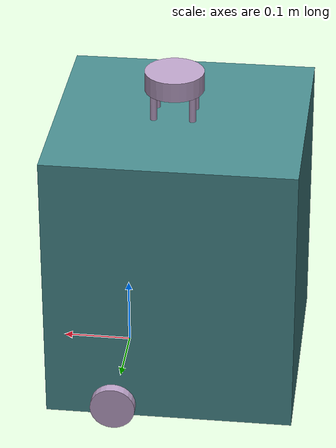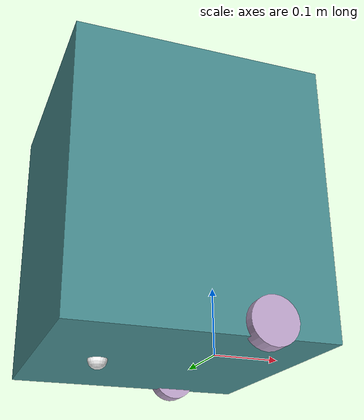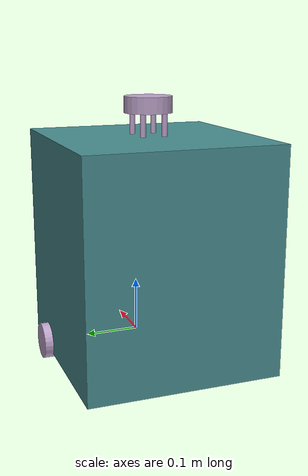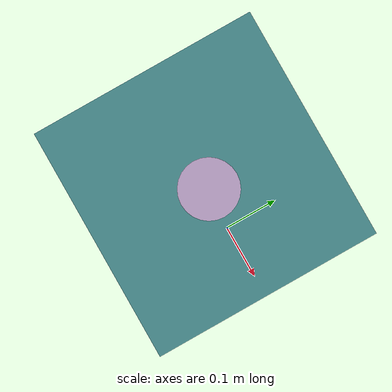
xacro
<?xml version="1.0"?>
<robot xmlns:xacro="http://www.ros.org/wiki/xacro"  name="robot">

    <xacro:arg name="use_ros2_control" default="true"/>
    <xacro:arg name="sim_mode" default="false"/>

    <xacro:include filename="robot_core.xacro" />

    <xacro:if value="$(arg use_ros2_control)">
        <xacro:include filename="ros2_control.xacro" />
    </xacro:if>
    <xacro:unless value="$(arg use_ros2_control)">
        <xacro:include filename="gazebo_control.xacro" />
    </xacro:unless>

    <xacro:include filename="lidar.xacro" />

    <xacro:include filename="face.xacro" />

</robot>

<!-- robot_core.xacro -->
<robot xmlns:xacro="http://www.ros.org/wiki/xacro" >

    <xacro:include filename="inertial_macros.xacro"/>

    <xacro:property name="chassis_length" value="0.361"/>
    <xacro:property name="chassis_width" value="0.351"/>
    <xacro:property name="chassis_height" value="0.409"/>
    <xacro:property name="chassis_mass" value="10.0"/>
    <xacro:property name="wheel_radius" value="0.033"/>
    <xacro:property name="wheel_thickness" value="0.026"/>
    <xacro:property name="wheel_mass" value="0.05"/>
    <xacro:property name="wheel_offset_x" value="0.261"/>
    <xacro:property name="wheel_offset_y" value="0.1776"/>
    <xacro:property name="wheel_offset_z" value="0.0185"/>
    <xacro:property name="caster_wheel_radius" value="0.014"/>
    <xacro:property name="caster_wheel_mass" value="0.01"/>
    <xacro:property name="caster_wheel_offset_x" value="0.089"/>
    <xacro:property name="caster_wheel_offset_z" value="${wheel_offset_z - wheel_radius + caster_wheel_radius}"/>

    <material name="white">
        <color rgba="1 1 1 1" />
    </material>

    <material name="orange">
        <color rgba="1 0.3 0.1 1"/>
    </material>

    <material name="blue">
        <color rgba="0.2 0.2 1 1"/>
    </material>

    <material name="black">
        <color rgba="0 0 0 1"/>
    </material>

    <material name="red">
        <color rgba="1 0 0 1"/>
    </material>

    <material name="teal">
        <color rgba="0.28 0.55 0.56 1"/>
    </material>

    <material name="purple">
        <color rgba="0.74 0.64 0.79 1"/>
    </material>

    <!-- BASE LINK -->

    <link name="base_link">

    </link>

    <!-- BASE_FOOTPRINT LINK -->

    <joint name="base_footprint_joint" type="fixed">
        <parent link="base_link"/>
        <child link="base_footprint"/>
        <origin xyz="0 0 0" rpy="0 0 0"/>
    </joint>

    <link name="base_footprint">
    </link>

    <!-- CHASSIS LINK -->

    <joint name="chassis_joint" type="fixed">
        <parent link="base_link"/>
        <child link="chassis"/>
        <origin xyz="${-wheel_offset_x} 0 ${-wheel_offset_z}"/>
    </joint>

    <link name="chassis">
        <visual>
            <origin xyz="${chassis_length/2} 0 ${chassis_height/2}"/>
            <geometry>
                <box size="${chassis_length} ${chassis_width} ${chassis_height}"/>
            </geometry>
            <material name="teal"/>
        </visual>
        <collision>
            <origin xyz="${chassis_length/2} 0 ${chassis_height/2}"/>
            <geometry>
                <box size="${chassis_length} ${chassis_width} ${chassis_height}"/>
            </geometry>
        </collision>
        <xacro:inertial_box mass="8.5" x="${chassis_length}" y="${chassis_width}" z="${chassis_height}">
            <origin xyz="${chassis_length/2} 0 ${chassis_height/2}" rpy="0 0 0"/>
        </xacro:inertial_box>
    </link>

    <gazebo reference="chassis">
        <material>Gazebo/Teal</material>
    </gazebo>

    <!-- LEFT WHEEL LINK -->

    <joint name="left_wheel_joint" type="continuous">
        <parent link="base_link"/>
        <child link="left_wheel"/>
        <origin xyz="0 ${wheel_offset_y} 0" rpy="-${pi/2} 0 0" />
        <axis xyz="0 0 1"/>
    </joint>

    <link name="left_wheel">
        <visual>
            <geometry>
                <cylinder radius="${wheel_radius}" length="${wheel_thickness}"/>
            </geometry>
            <material name="purple"/>
        </visual>
        <collision>
            <geometry>
                <sphere radius="${wheel_radius}"/>
            </geometry>
        </collision>
        <xacro:inertial_cylinder mass="${wheel_mass}" length="${wheel_thickness}" radius="${wheel_radius}">
            <origin xyz="0 0 0" rpy="0 0 0"/>
        </xacro:inertial_cylinder>
    </link>

    <gazebo reference="left_wheel">
        <material>Gazebo/Purple</material>
    </gazebo>

    <!-- RIGHT WHEEL LINK -->

    <joint name="right_wheel_joint" type="continuous">
        <parent link="base_link"/>
        <child link="right_wheel"/>
        <origin xyz="0 ${-wheel_offset_y} 0" rpy="${pi/2} 0 0" />
        <axis xyz="0 0 -1"/>
    </joint>

    <link name="right_wheel">
        <visual>
            <geometry>
                <cylinder radius="${wheel_radius}" length="${wheel_thickness}"/>
            </geometry>
            <material name="purple"/>
        </visual>
        <collision>
            <geometry>
                <sphere radius="${wheel_radius}"/>
            </geometry>
        </collision>
        <xacro:inertial_cylinder mass="${wheel_mass}" length="${wheel_thickness}" radius="${wheel_radius}">
            <origin xyz="0 0 0" rpy="0 0 0"/>
        </xacro:inertial_cylinder>
    </link>

    <gazebo reference="right_wheel">
        <material>Gazebo/Purple</material>
    </gazebo>

    <!-- CASTER WHEEL LINK -->

    <joint name="caster_wheel_joint" type="fixed">
        <parent link="chassis"/>
        <child link="caster_wheel"/>
        <origin xyz="${caster_wheel_offset_x} 0 ${caster_wheel_offset_z}"/>
    </joint>

    <link name="caster_wheel">
        <visual>
            <geometry>
                <sphere radius="${caster_wheel_radius}"/>
            </geometry>
            <material name="white"/>
        </visual>
        <collision>
            <geometry>
                <sphere radius="${caster_wheel_radius}"/>
            </geometry>
        </collision>
        <xacro:inertial_sphere mass="${caster_wheel_mass}" radius="${caster_wheel_radius}">
            <origin xyz="0 0 0" rpy="0 0 0"/>
        </xacro:inertial_sphere>
    </link>

    <gazebo reference="caster_wheel">
        <material>Gazebo/White</material>
        <mu1 value="0.001"/>
        <mu2 value="0.001"/>
    </gazebo>

</robot>

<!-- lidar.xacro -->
<robot xmlns:xacro="http://www.ros.org/wiki/xacro" >

    <joint name="laser_joint" type="fixed">
        <parent link="chassis"/>
        <child link="laser_frame"/>
        <origin xyz="0.191 0 0.463" rpy="0 0 0"/>
    </joint>

    <link name="laser_frame">
        <visual>
            <geometry>
                <cylinder radius="0.043" length="0.029"/>
            </geometry>
            <material name="purple"/>
        </visual>
        <visual>
            <origin xyz="0.028 0.020 -0.05"/>
            <geometry>
                <cylinder radius="0.005" length="0.08"/>
            </geometry>
            <material name="purple"/>
        </visual>
        <visual>
            <origin xyz="0.028 -0.020 -0.05"/>
            <geometry>
                <cylinder radius="0.005" length="0.08"/>
            </geometry>
            <material name="purple"/>
        </visual>
        <visual>
            <origin xyz="-0.028 0.020 -0.05"/>
            <geometry>
                <cylinder radius="0.005" length="0.08"/>
            </geometry>
            <material name="purple"/>
        </visual>
        <visual>
            <origin xyz="-0.028 -0.020 -0.05"/>
            <geometry>
                <cylinder radius="0.005" length="0.08"/>
            </geometry>
            <material name="purple"/>
        </visual>
        <collision>
            <geometry>
                <cylinder radius="0.033" length="0.029"/>
            </geometry>
        </collision>
        <xacro:inertial_cylinder mass="0.1" length="0.029" radius="0.033">
            <origin xyz="0 0 0" rpy="0 0 0"/>
        </xacro:inertial_cylinder>
    </link>

    <gazebo reference="laser_frame">
        <material>Gazebo/Black</material>

        <sensor name="laser" type="ray">
            <pose> 0 0 0 0 0 0 </pose>
            <visualize>false</visualize>
            <update_rate>10</update_rate>
            <ray>
                <scan>
                    <horizontal>
                        <samples>360</samples>
                        <min_angle>-3.14</min_angle>
                        <max_angle>3.14</max_angle>
                    </horizontal>
                </scan>
                <range>
                    <min>0.3</min>
                    <max>12</max>
                </range>
            </ray>
            <plugin name="laser_controller" filename="libgazebo_ros_ray_sensor.so">
                <ros>
                    <argument>~/out:=scan</argument>
                </ros>
                <output_type>sensor_msgs/LaserScan</output_type>
                <frame_name>laser_frame</frame_name>
            </plugin>
        </sensor>
    </gazebo>

</robot>

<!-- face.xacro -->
<robot xmlns:xacro="http://www.ros.org/wiki/xacro" >

    <joint name="face_joint" type="fixed">
        <parent link="chassis"/>
        <child link="face_link"/>
        <origin xyz="${chassis_length} 0 ${chassis_height/2}" rpy="0 0 0"/>
    </joint>

    <link name="face_link">
        <visual>
            <origin xyz="0 0.08 0.02" rpy="0 ${pi/2} 0"/>
            <geometry>
                <cylinder radius="0.025" length="0.003"/>
            </geometry>
            <material name="black"/>
        </visual>

        <visual>
            <origin xyz="0 -0.08 0.02" rpy="0 ${pi/2} 0"/>
            <geometry>
                <cylinder radius="0.025" length="0.003"/>
            </geometry>
            <material name="black"/>
        </visual>

        <visual>
            <origin xyz="-0.011 0 -0.05" rpy="0 ${1.5} 0"/>
            <geometry>
                <cylinder radius="0.045" length="0.0225"/>
            </geometry>
            <material name="red"/>
        </visual>
    </link>

    <gazebo reference="face_link">
        <material>Gazebo/Black</material>
    </gazebo>

</robot>
